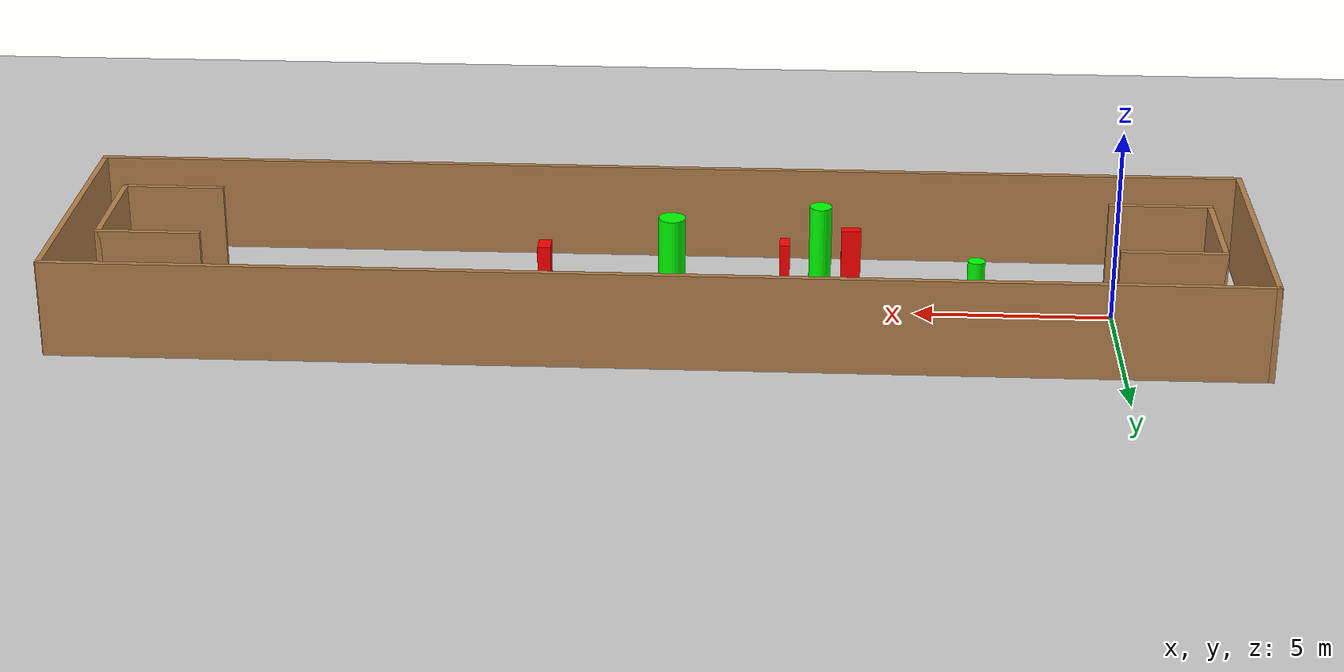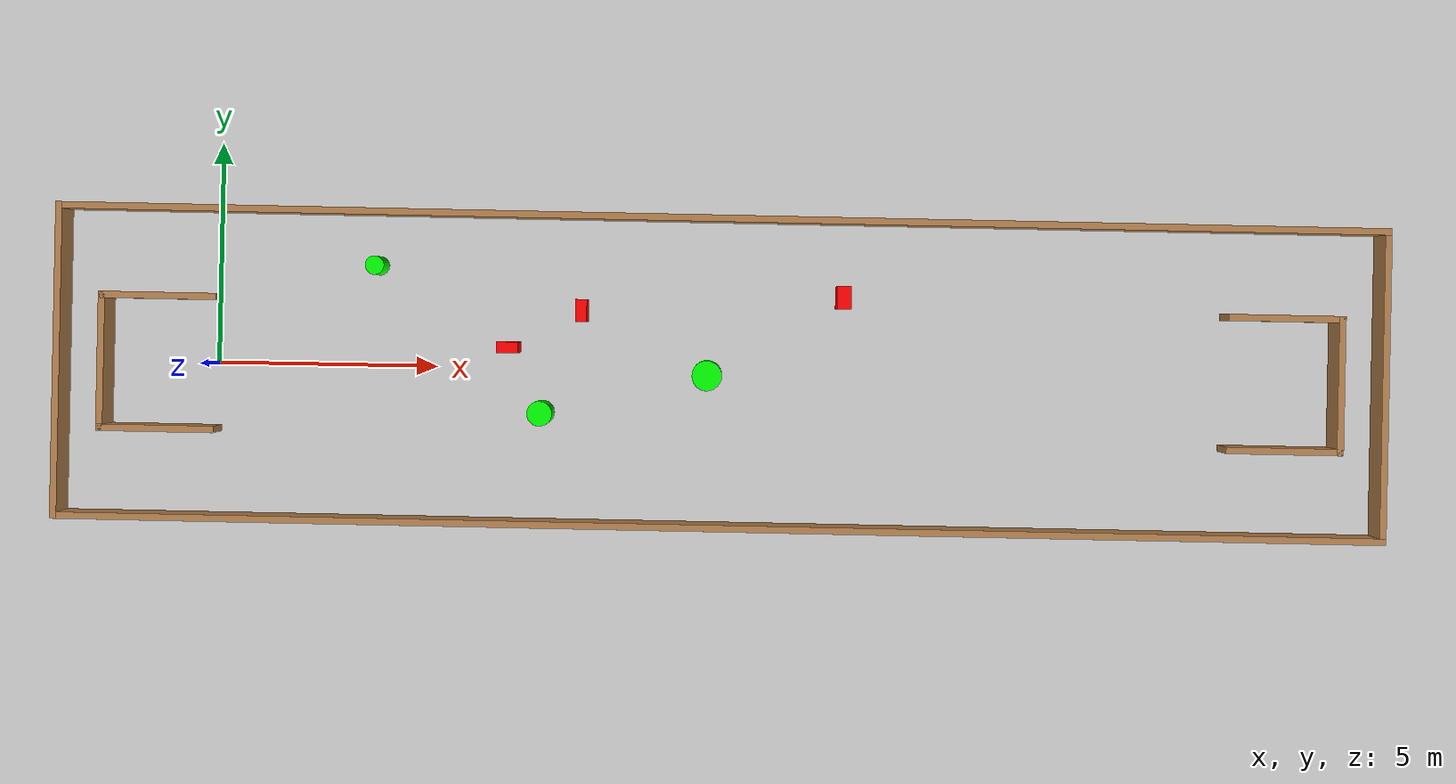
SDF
<sdf version="1.7">
 <world name="default">
  <light name="sun" type="directional">
   <pose>0 0 10 0 -0 0</pose>
   <diffuse>0.8 0.8 0.8 1</diffuse>
   <specular>0.2 0.2 0.2 1</specular>
   <attenuation>
    <range>1000</range>
    <constant>0.9</constant>
    <linear>0.01</linear>
    <quadratic>0.001</quadratic>
   </attenuation>
   <direction>-0.5 0.1 -0.9</direction>
   <spot><inner_angle>0</inner_angle><outer_angle>0</outer_angle><falloff>0</falloff></spot>
  </light>
  <model name="ground_plane">
   <static>1</static>
   <link name="link">
    <collision name="collision">
     <geometry><plane><normal>0 0 1</normal><size>100 100</size></plane></geometry>
     <surface>
      <contact><collide_bitmask>65535</collide_bitmask></contact>
      <friction><ode><mu>100</mu><mu2>50</mu2></ode></friction>
     </surface>
    </collision>
    <visual name="visual">
     <cast_shadows>0</cast_shadows>
     <geometry><plane><normal>0 0 1</normal><size>100 100</size></plane></geometry>
     <material>
      <script><uri>file://media/materials/scripts/gazebo.material</uri><name>Gazebo/Grey</name></script>
     </material>
    </visual>
   </link>
  </model>
  <gravity>0 0 -9.8</gravity>
  <magnetic_field>6e-06 2.3e-05 -4.2e-05</magnetic_field>
  <atmosphere type="adiabatic"/>
  <physics type="ode">
   <max_step_size>0.001</max_step_size>
   <real_time_factor>1</real_time_factor>
   <real_time_update_rate>1000</real_time_update_rate>
  </physics>
  <scene><ambient>0.4 0.4 0.4 1</ambient><background>0.7 0.7 0.7 1</background><shadows>1</shadows></scene>
  <spherical_coordinates>
   <surface_model>EARTH_WGS84</surface_model>
   <latitude_deg>0</latitude_deg>
   <longitude_deg>0</longitude_deg>
   <elevation>0</elevation>
   <heading_deg>0</heading_deg>
  </spherical_coordinates>
  <model name="my_base_walls">
   <link name="Wall_0">
    <collision name="Wall_0_Collision">
     <geometry><box><size>7.15 0.15 2.5</size></box></geometry>
     <pose>0 0 1.25 0 -0 0</pose>
    </collision>
    <visual name="Wall_0_Visual">
     <pose>0 0 1.25 0 -0 0</pose>
     <geometry><box><size>7.15 0.15 2.5</size></box></geometry>
     <material>
      <script><uri>file://media/materials/scripts/gazebo.material</uri><name>Gazebo/Wood</name></script>
      <ambient>1 1 1 1</ambient>
     </material>
     <meta><layer>0</layer></meta>
    </visual>
    <pose>-15 0 0 0 -0 1.5708</pose>
   </link>
   <link name="Wall_10">
    <collision name="Wall_10_Collision">
     <geometry><box><size>2.65 0.15 2.5</size></box></geometry>
     <pose>0 0 1.25 0 -0 0</pose>
    </collision>
    <visual name="Wall_10_Visual">
     <pose>0 0 1.25 0 -0 0</pose>
     <geometry><box><size>2.65 0.15 2.5</size></box></geometry>
     <material>
      <script><uri>file://media/materials/scripts/gazebo.material</uri><name>Gazebo/Wood</name></script>
      <ambient>1 1 1 1</ambient>
     </material>
     <meta><layer>0</layer></meta>
    </visual>
    <pose>-12.75 -1.5 0 0 -0 0</pose>
   </link>
   <link name="Wall_12">
    <collision name="Wall_12_Collision">
     <geometry><box><size>2.65 0.15 2.5</size></box></geometry>
     <pose>0 0 1.25 0 -0 0</pose>
    </collision>
    <visual name="Wall_12_Visual">
     <pose>0 0 1.25 0 -0 0</pose>
     <geometry><box><size>2.65 0.15 2.5</size></box></geometry>
     <material>
      <script><uri>file://media/materials/scripts/gazebo.material</uri><name>Gazebo/Wood</name></script>
      <ambient>1 1 1 1</ambient>
     </material>
     <meta><layer>0</layer></meta>
    </visual>
    <pose>-12.75 1.5 0 0 -0 0</pose>
   </link>
   <link name="Wall_14">
    <collision name="Wall_14_Collision">
     <geometry><box><size>3.15 0.15 2.5</size></box></geometry>
     <pose>0 0 1.25 0 -0 0</pose>
    </collision>
    <visual name="Wall_14_Visual">
     <pose>0 0 1.25 0 -0 0</pose>
     <geometry><box><size>3.15 0.15 2.5</size></box></geometry>
     <material>
      <script><uri>file://media/materials/scripts/gazebo.material</uri><name>Gazebo/Wood</name></script>
      <ambient>1 1 1 1</ambient>
     </material>
     <meta><layer>0</layer></meta>
    </visual>
    <pose>14 0 0 0 -0 -1.5708</pose>
   </link>
   <link name="Wall_15">
    <collision name="Wall_15_Collision">
     <geometry><box><size>2.65 0.15 2.5</size></box></geometry>
     <pose>0 0 1.25 0 -0 0</pose>
    </collision>
    <visual name="Wall_15_Visual">
     <pose>0 0 1.25 0 -0 0</pose>
     <geometry><box><size>2.65 0.15 2.5</size></box></geometry>
     <material>
      <script><uri>file://media/materials/scripts/gazebo.material</uri><name>Gazebo/Wood</name></script>
      <ambient>1 1 1 1</ambient>
     </material>
     <meta><layer>0</layer></meta>
    </visual>
    <pose>12.75 -1.5 0 0 -0 3.14159</pose>
   </link>
   <link name="Wall_17">
    <collision name="Wall_17_Collision">
     <geometry><box><size>2.65 0.15 2.5</size></box></geometry>
     <pose>0 0 1.25 0 -0 0</pose>
    </collision>
    <visual name="Wall_17_Visual">
     <pose>0 0 1.25 0 -0 0</pose>
     <geometry><box><size>2.65 0.15 2.5</size></box></geometry>
     <material>
      <script><uri>file://media/materials/scripts/gazebo.material</uri><name>Gazebo/Wood</name></script>
      <ambient>1 1 1 1</ambient>
     </material>
     <meta><layer>0</layer></meta>
    </visual>
    <pose>12.75 1.5 0 0 -0 3.14159</pose>
   </link>
   <link name="Wall_2">
    <collision name="Wall_2_Collision">
     <geometry><box><size>30.15 0.15 2.5</size></box></geometry>
     <pose>0 0 1.25 0 -0 0</pose>
    </collision>
    <visual name="Wall_2_Visual">
     <pose>0 0 1.25 0 -0 0</pose>
     <geometry><box><size>30.15 0.15 2.5</size></box></geometry>
     <material>
      <script><uri>file://media/materials/scripts/gazebo.material</uri><name>Gazebo/Wood</name></script>
      <ambient>1 1 1 1</ambient>
     </material>
     <meta><layer>0</layer></meta>
    </visual>
    <pose>-0 -3.5 0 0 -0 0</pose>
   </link>
   <link name="Wall_4">
    <collision name="Wall_4_Collision">
     <geometry><box><size>30.15 0.15 2.5</size></box></geometry>
     <pose>0 0 1.25 0 -0 0</pose>
    </collision>
    <visual name="Wall_4_Visual">
     <pose>0 0 1.25 0 -0 0</pose>
     <geometry><box><size>30.15 0.15 2.5</size></box></geometry>
     <material>
      <script><uri>file://media/materials/scripts/gazebo.material</uri><name>Gazebo/Wood</name></script>
      <ambient>1 1 1 1</ambient>
     </material>
     <meta><layer>0</layer></meta>
    </visual>
    <pose>-0 3.5 0 0 -0 0</pose>
   </link>
   <link name="Wall_6">
    <collision name="Wall_6_Collision">
     <geometry><box><size>7.15 0.15 2.5</size></box></geometry>
     <pose>0 0 1.25 0 -0 0</pose>
    </collision>
    <visual name="Wall_6_Visual">
     <pose>0 0 1.25 0 -0 0</pose>
     <geometry><box><size>7.15 0.15 2.5</size></box></geometry>
     <material>
      <script><uri>file://media/materials/scripts/gazebo.material</uri><name>Gazebo/Wood</name></script>
      <ambient>1 1 1 1</ambient>
     </material>
     <meta><layer>0</layer></meta>
    </visual>
    <pose>15 0 0 0 -0 -1.5708</pose>
   </link>
   <link name="Wall_9">
    <collision name="Wall_9_Collision">
     <geometry><box><size>3.15 0.15 2.5</size></box></geometry>
     <pose>0 0 1.25 0 -0 0</pose>
    </collision>
    <visual name="Wall_9_Visual">
     <pose>0 0 1.25 0 -0 0</pose>
     <geometry><box><size>3.15 0.15 2.5</size></box></geometry>
     <material>
      <script><uri>file://media/materials/scripts/gazebo.material</uri><name>Gazebo/Wood</name></script>
      <ambient>1 1 1 1</ambient>
     </material>
     <meta><layer>0</layer></meta>
    </visual>
    <pose>-14 0 0 0 -0 -1.5708</pose>
   </link>
   <static>1</static>
   <pose>11.5 0 0 0 -0 0</pose>
  </model>
  <model name="cylinder1">
   <static>1</static>
   <link name="link">
    <inertial>
     <mass>1</mass>
     <inertia><ixx>0.5</ixx><ixy>0</ixy><ixz>0</ixz><iyy>0.5</iyy><iyz>0</iyz><izz>1</izz></inertia>
    </inertial>
    <collision name="collision">
     <geometry><cylinder><radius>0.2128189652740061</radius><length>2.5</length></cylinder></geometry>
    </collision>
    <visual name="visual">
     <geometry><cylinder><radius>0.2128189652740061</radius><length>2.5</length></cylinder></geometry>
     <material>
      <ambient>0 1 0 1</ambient>
      <diffuse>0 1 0 1</diffuse>
      <specular>0.1 0.1 0.1 1</specular>
      <emissive>0 0 0 0</emissive>
     </material>
    </visual>
   </link>
   <pose>3.6441907479621882 2.2818481844830716 1.25 0 0 0</pose>
  </model>
  <model name="cylinder2">
   <static>1</static>
   <link name="link">
    <inertial>
     <mass>1</mass>
     <inertia><ixx>0.5</ixx><ixy>0</ixy><ixz>0</ixz><iyy>0.5</iyy><iyz>0</iyz><izz>1</izz></inertia>
    </inertial>
    <collision name="collision">
     <geometry><cylinder><radius>0.2826007059094573</radius><length>2.5</length></cylinder></geometry>
    </collision>
    <visual name="visual">
     <geometry><cylinder><radius>0.2826007059094573</radius><length>2.5</length></cylinder></geometry>
     <material>
      <ambient>0 1 0 1</ambient>
      <diffuse>0 1 0 1</diffuse>
      <specular>0.1 0.1 0.1 1</specular>
      <emissive>0 0 0 0</emissive>
     </material>
    </visual>
   </link>
   <pose>7.422908859620046 -0.9961528466148111 1.25 0 0 0</pose>
  </model>
  <model name="cylinder3">
   <static>1</static>
   <link name="link">
    <inertial>
     <mass>1</mass>
     <inertia><ixx>0.5</ixx><ixy>0</ixy><ixz>0</ixz><iyy>0.5</iyy><iyz>0</iyz><izz>1</izz></inertia>
    </inertial>
    <collision name="collision">
     <geometry><cylinder><radius>0.3410744758322961</radius><length>2.5</length></cylinder></geometry>
    </collision>
    <visual name="visual">
     <geometry><cylinder><radius>0.3410744758322961</radius><length>2.5</length></cylinder></geometry>
     <material>
      <ambient>0 1 0 1</ambient>
      <diffuse>0 1 0 1</diffuse>
      <specular>0.1 0.1 0.1 1</specular>
      <emissive>0 0 0 0</emissive>
     </material>
    </visual>
   </link>
   <pose>11.185397455053922 -0.06601939232066867 1.25 0 0 0</pose>
  </model>
  <model name="box1">
   <static>1</static>
   <link name="link">
    <inertial>
     <mass>1</mass>
     <inertia><ixx>0.083</ixx><ixy>0</ixy><ixz>0</ixz><iyy>0.083</iyy><iyz>0</iyz><izz>0.083</izz></inertia>
    </inertial>
    <collision name="collision">
     <geometry><box><size>0.320963506419515 0.5146360469848584 2.5</size></box></geometry>
    </collision>
    <visual name="visual">
     <geometry><box><size>0.320963506419515 0.5146360469848584 2.5</size></box></geometry>
     <material>
      <ambient>1 0 0 1</ambient>
      <diffuse>1 0 0 1</diffuse>
      <specular>0.1 0.1 0.1 1</specular>
      <emissive>0 0 0 0</emissive>
     </material>
    </visual>
    <sensor name="my_contact" type="contact">
     <contact><collision>box_collision</collision><topic>__default_topic__</topic></contact>
    </sensor>
   </link>
   <pose>14.253936481577238 1.760157365152521 1.25 0 0 0</pose>
  </model>
  <model name="box2">
   <static>1</static>
   <link name="link">
    <inertial>
     <mass>1</mass>
     <inertia><ixx>0.083</ixx><ixy>0</ixy><ixz>0</ixz><iyy>0.083</iyy><iyz>0</iyz><izz>0.083</izz></inertia>
    </inertial>
    <collision name="collision">
     <geometry><box><size>0.2499729216114445 0.5131767514667291 2.5</size></box></geometry>
    </collision>
    <visual name="visual">
     <geometry><box><size>0.2499729216114445 0.5131767514667291 2.5</size></box></geometry>
     <material>
      <ambient>1 0 0 1</ambient>
      <diffuse>1 0 0 1</diffuse>
      <specular>0.1 0.1 0.1 1</specular>
      <emissive>0 0 0 0</emissive>
     </material>
    </visual>
    <sensor name="my_contact" type="contact">
     <contact><collision>box_collision</collision><topic>__default_topic__</topic></contact>
    </sensor>
   </link>
   <pose>8.321087002578173 1.3491150479352578 1.25 0 0 0</pose>
  </model>
  <model name="box3">
   <static>1</static>
   <link name="link">
    <inertial>
     <mass>1</mass>
     <inertia><ixx>0.083</ixx><ixy>0</ixy><ixz>0</ixz><iyy>0.083</iyy><iyz>0</iyz><izz>0.083</izz></inertia>
    </inertial>
    <collision name="collision">
     <geometry><box><size>0.48760963523213724 0.24588854742539915 2.5</size></box></geometry>
    </collision>
    <visual name="visual">
     <geometry><box><size>0.48760963523213724 0.24588854742539915 2.5</size></box></geometry>
     <material>
      <ambient>1 0 0 1</ambient>
      <diffuse>1 0 0 1</diffuse>
      <specular>0.1 0.1 0.1 1</specular>
      <emissive>0 0 0 0</emissive>
     </material>
    </visual>
    <sensor name="my_contact" type="contact">
     <contact><collision>box_collision</collision><topic>__default_topic__</topic></contact>
    </sensor>
   </link>
   <pose>6.6684657496882025 0.486357799054129 1.25 0 0 0</pose>
  </model>
 </world>
</sdf>
